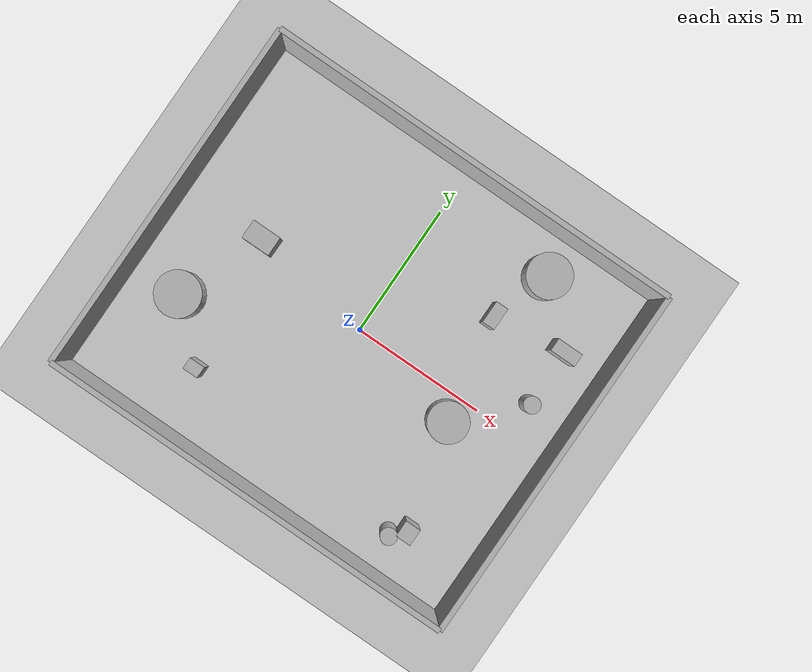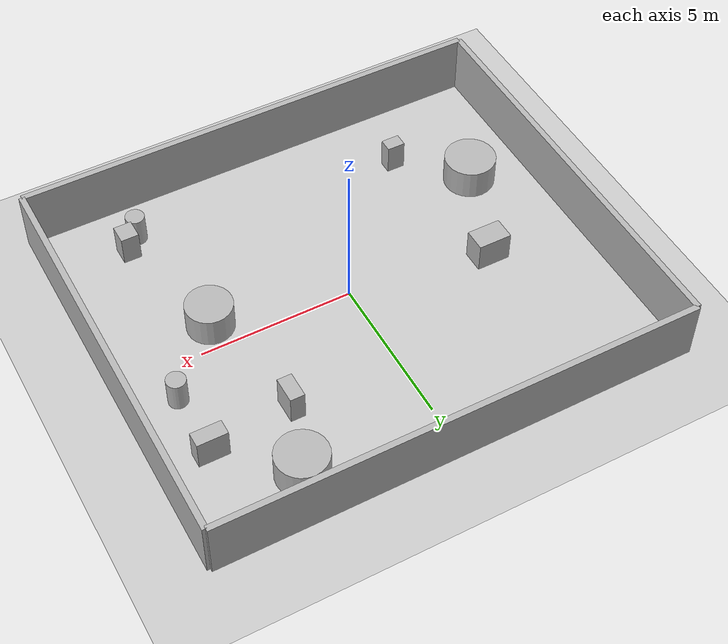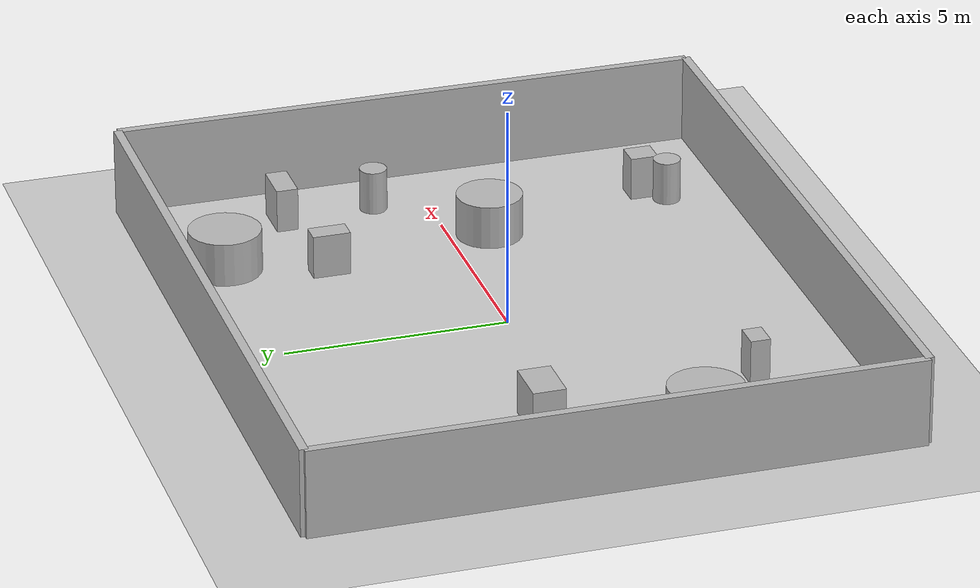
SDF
<?xml version="1.0"?>
<sdf version="1.6">
  <world name="env_65">

    <include><uri>model://ground_plane</uri></include>
    <include><uri>model://sun</uri></include>

    <!-- WALLS -->
    <model name="wall_north"><static>true</static><pose>0 6.698917613166989 1 0 0 0</pose>
      <link name="link"><collision name="collision">
        <geometry><box><size>15.650782114679853 0.2 2</size></box></geometry>
      </collision><visual name="visual">
        <geometry><box><size>15.650782114679853 0.2 2</size></box></geometry>
      </visual></link>
    </model>

    <model name="wall_south"><static>true</static><pose>0 -6.698917613166989 1 0 0 0</pose>
      <link name="link"><collision name="collision">
        <geometry><box><size>15.650782114679853 0.2 2</size></box></geometry>
      </collision><visual name="visual">
        <geometry><box><size>15.650782114679853 0.2 2</size></box></geometry>
      </visual></link>
    </model>

    <model name="wall_east"><static>true</static><pose>7.825391057339926 0 1 0 0 1.57</pose>
      <link name="link"><collision name="collision">
        <geometry><box><size>13.397835226333978 0.2 2</size></box></geometry>
      </collision><visual name="visual">
        <geometry><box><size>13.397835226333978 0.2 2</size></box></geometry>
      </visual></link>
    </model>

    <model name="wall_west"><static>true</static><pose>-7.825391057339926 0 1 0 0 1.57</pose>
      <link name="link"><collision name="collision">
        <geometry><box><size>13.397835226333978 0.2 2</size></box></geometry>
      </collision><visual name="visual">
        <geometry><box><size>13.397835226333978 0.2 2</size></box></geometry>
      </visual></link>
    </model>

    <!-- SENSOR -->

    <model name="lidar_sensor">
      <static>true</static>
      <pose>-3.266040528470737 -4.346666428288633 0.4 0 0 0</pose>
      <link name="link">
        <sensor name="lidar" type="ray">
          <pose>0 0 0 0 0 0</pose>
          <visualize>true</visualize>
          <always_on>true</always_on>
          <update_rate>10</update_rate>
          <ray>
            <scan><horizontal>
              <samples>720</samples>
              <resolution>1</resolution>
              <min_angle>-3.14159</min_angle>
              <max_angle>3.14159</max_angle>
            </horizontal></scan>
            <range><min>0.15</min><max>20.0</max><resolution>0.01</resolution></range>
          </ray>
          <plugin name="lidar_plugin" filename="liblidar_plugin.so"/>
        </sensor>
      </link>
    </model>

    <!-- OBSTACLES -->

    <model name="obstacle_0">
      <static>true</static>
      <pose>4.286977801828769 5.183068439109375 0.5 0 0 0</pose>
      <link name="link">
        <collision name="collision">
          <geometry><cylinder><radius>0.82</radius><length>1.0</length></cylinder></geometry>
        </collision>
        <visual name="visual">
          <geometry><cylinder><radius>0.82</radius><length>1.0</length></cylinder></geometry>
        </visual>
      </link>
    </model>

    <model name="obstacle_1">
      <static>true</static>
      <pose>-3.9404769275593474 -4.2886277901338845 0.5 0 0 0</pose>
      <link name="link">
        <collision name="collision">
          <geometry><box><size>0.59 0.44 1.0</size></box></geometry>
        </collision>
        <visual name="visual">
          <geometry><box><size>0.59 0.44 1.0</size></box></geometry>
        </visual>
      </link>
    </model>

    <model name="obstacle_2">
      <static>true</static>
      <pose>5.287478545268327 -4.778738633789045 0.5 0 0 0</pose>
      <link name="link">
        <collision name="collision">
          <geometry><box><size>0.58 0.63 1.0</size></box></geometry>
        </collision>
        <visual name="visual">
          <geometry><box><size>0.58 0.63 1.0</size></box></geometry>
        </visual>
      </link>
    </model>

    <model name="obstacle_3">
      <static>true</static>
      <pose>-5.817589555781971 -2.524293405049311 0.5 0 0 0</pose>
      <link name="link">
        <collision name="collision">
          <geometry><cylinder><radius>0.84</radius><length>1.0</length></cylinder></geometry>
        </collision>
        <visual name="visual">
          <geometry><cylinder><radius>0.84</radius><length>1.0</length></cylinder></geometry>
        </visual>
      </link>
    </model>

    <model name="obstacle_4">
      <static>true</static>
      <pose>4.274987876344566 -0.896923138612542 0.5 0 0 0</pose>
      <link name="link">
        <collision name="collision">
          <geometry><cylinder><radius>0.75</radius><length>1.0</length></cylinder></geometry>
        </collision>
        <visual name="visual">
          <geometry><cylinder><radius>0.75</radius><length>1.0</length></cylinder></geometry>
        </visual>
      </link>
    </model>

    <model name="obstacle_5">
      <static>true</static>
      <pose>3.524911191060651 3.017420801058549 0.5 0 0 0</pose>
      <link name="link">
        <collision name="collision">
          <geometry><box><size>0.47 0.85 1.0</size></box></geometry>
        </collision>
        <visual name="visual">
          <geometry><box><size>0.47 0.85 1.0</size></box></geometry>
        </visual>
      </link>
    </model>

    <model name="obstacle_6">
      <static>true</static>
      <pose>6.291641463859003 1.2150111060017554 0.5 0 0 0</pose>
      <link name="link">
        <collision name="collision">
          <geometry><cylinder><radius>0.31</radius><length>1.0</length></cylinder></geometry>
        </collision>
        <visual name="visual">
          <geometry><cylinder><radius>0.31</radius><length>1.0</length></cylinder></geometry>
        </visual>
      </link>
    </model>

    <model name="obstacle_7">
      <static>true</static>
      <pose>6.244829158547091 3.358827979556784 0.5 0 0 0</pose>
      <link name="link">
        <collision name="collision">
          <geometry><box><size>0.98 0.49 1.0</size></box></geometry>
        </collision>
        <visual name="visual">
          <geometry><box><size>0.98 0.49 1.0</size></box></geometry>
        </visual>
      </link>
    </model>

    <model name="obstacle_8">
      <static>true</static>
      <pose>4.800583992112061 -5.243737857899925 0.5 0 0 0</pose>
      <link name="link">
        <collision name="collision">
          <geometry><cylinder><radius>0.31</radius><length>1.0</length></cylinder></geometry>
        </collision>
        <visual name="visual">
          <geometry><cylinder><radius>0.31</radius><length>1.0</length></cylinder></geometry>
        </visual>
      </link>
    </model>

    <model name="obstacle_9">
      <static>true</static>
      <pose>-4.563547822699516 0.6682796181156458 0.5 0 0 0</pose>
      <link name="link">
        <collision name="collision">
          <geometry><box><size>1.1 0.73 1.0</size></box></geometry>
        </collision>
        <visual name="visual">
          <geometry><box><size>1.1 0.73 1.0</size></box></geometry>
        </visual>
      </link>
    </model>

  </world>
</sdf>
